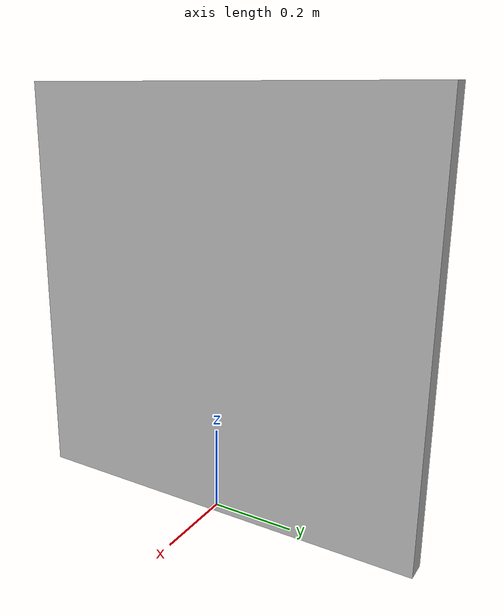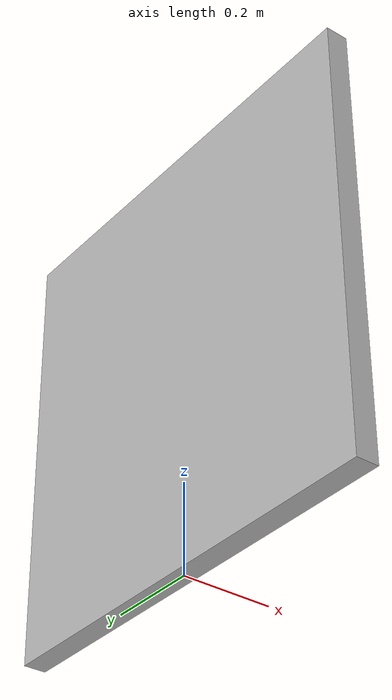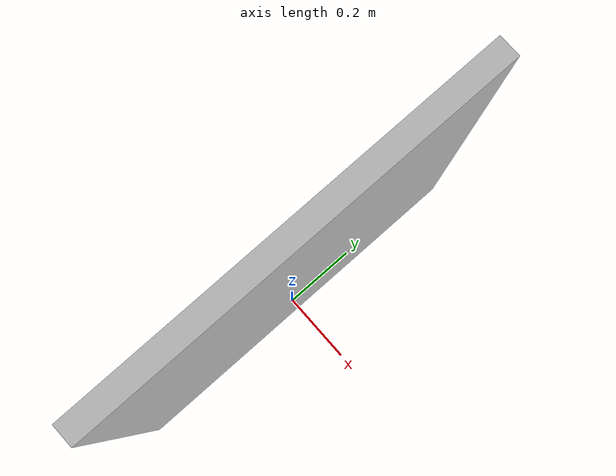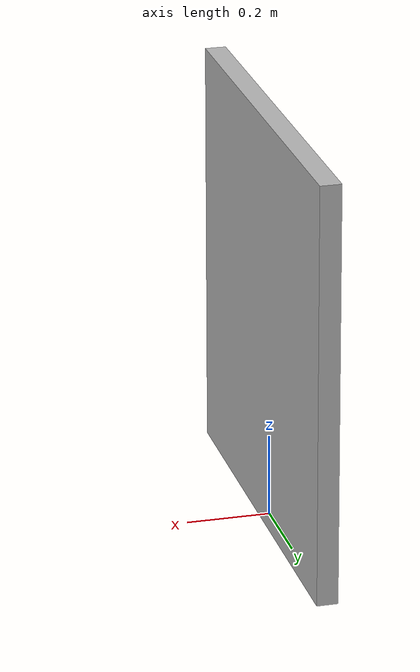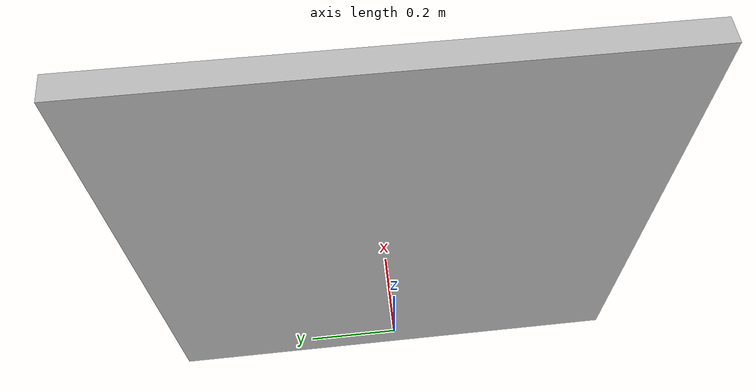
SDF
<?xml version='1.0'?>
<sdf version='1.6'>
  <model name='Sign'>
    <link name='link'>
      <pose frame=''>0 0 0 0 -0 0</pose>
      <inertial>
        <mass>1</mass>
        <inertia>
          <ixx>0.166667</ixx>
          <ixy>0</ixy>
          <ixz>0</ixz>
          <iyy>0.166667</iyy>
          <iyz>0</iyz>
          <izz>0.166667</izz>
        </inertia>
        <pose frame=''>0 0 0 0 -0 0</pose>
      </inertial>
      <self_collide>0</self_collide>
      <kinematic>0</kinematic>
      <gravity>1</gravity>
      <visual name='visual'>
        <geometry>
          <box>
            <size>1 0.05 1</size>
          </box>
        </geometry>
        <material>
          <script>
            <uri>model://ground_plane/materials/scripts/my_ground_plane.material</uri>
            <uri>model://ground_plane/materials/textures</uri>
            <name>my_ground_plane/NaioLogo</name>
          </script>
        </material>
        <pose frame=''>0 0 0.5 0 -0 1.57</pose>
        <cast_shadows>1</cast_shadows>
        <transparency>0</transparency>
      </visual>
    </link>
    <static>1</static>
    <allow_auto_disable>1</allow_auto_disable>
  </model>
</sdf>
